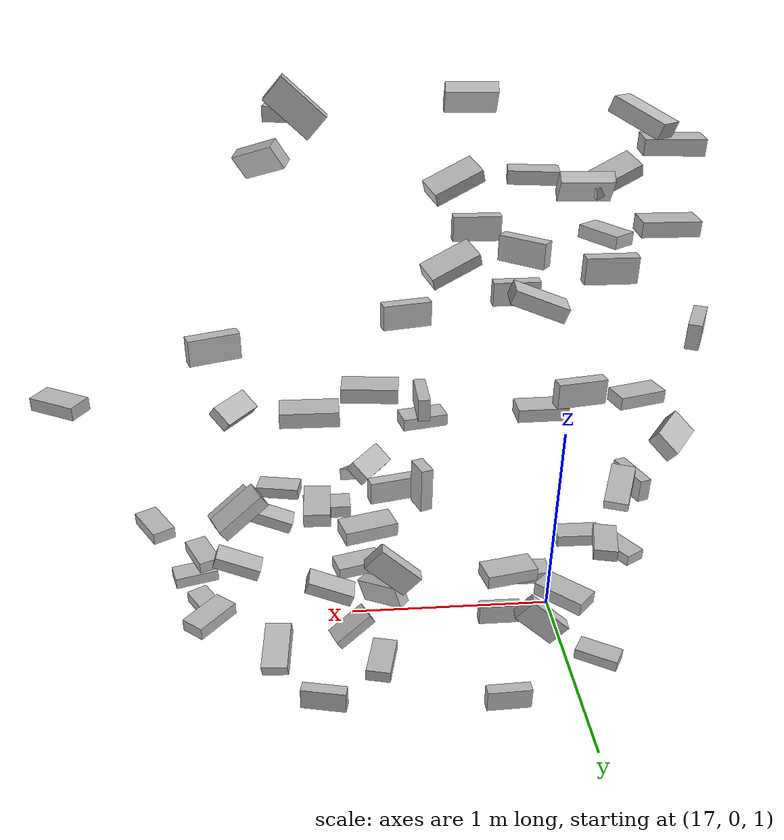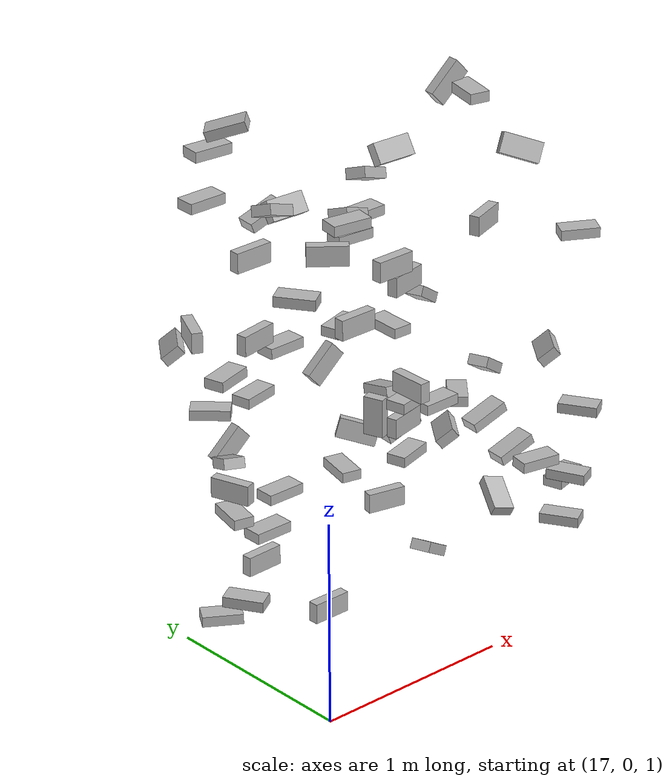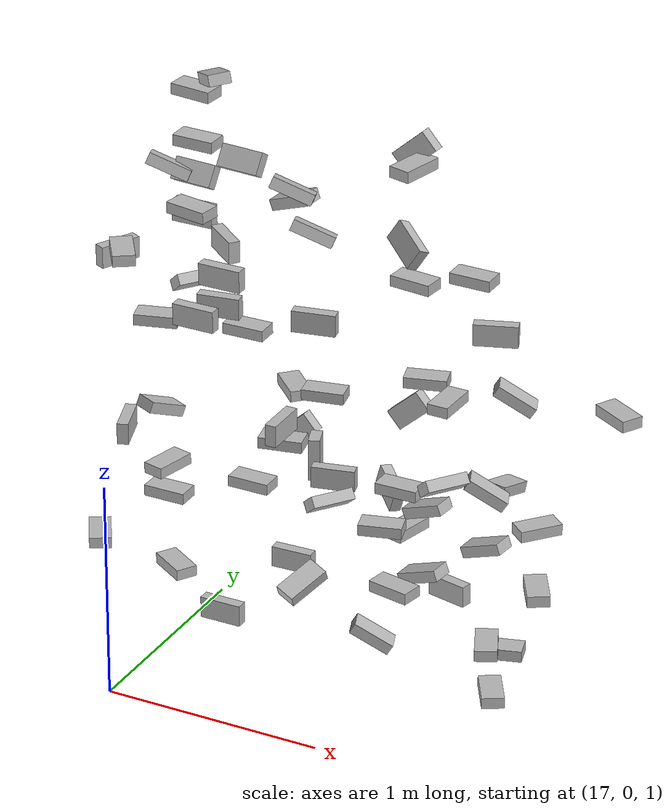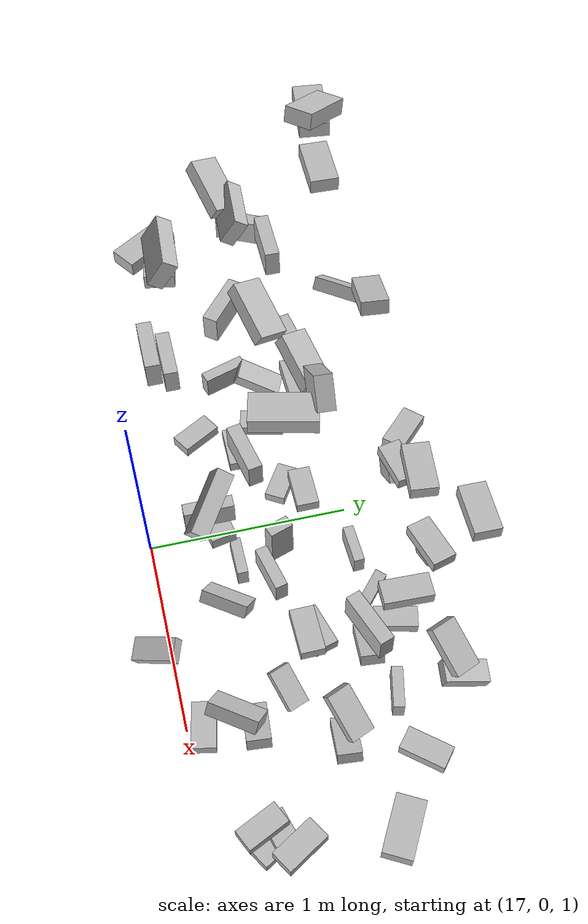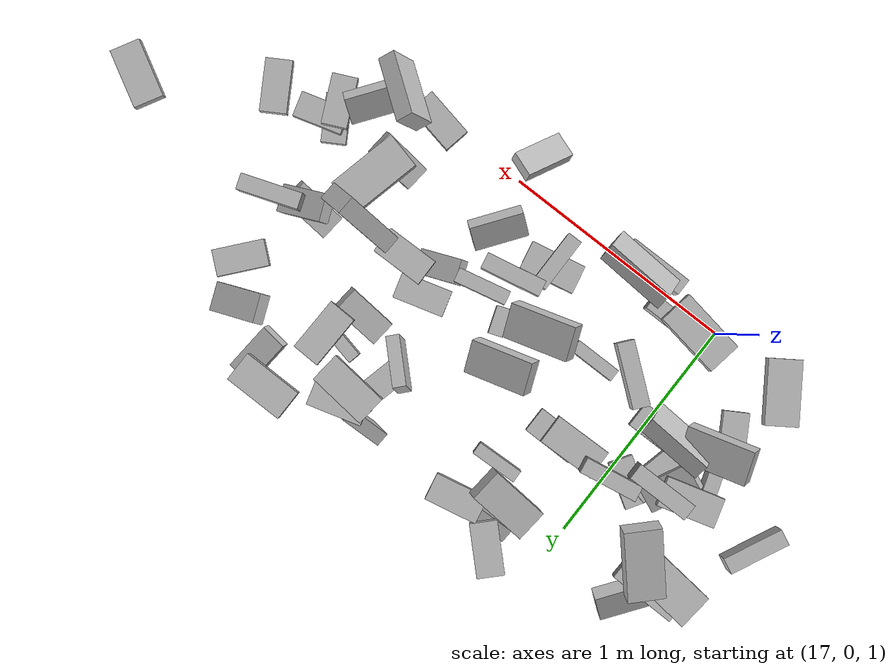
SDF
<sdf version="1.5">
 <world name="default">
  <scene>
   <sky><clouds><speed>3</speed></clouds></sky>
   <ambient>0.6 0.6 0.6 1</ambient>
   <background>0.5 0.5 0.5 1</background>
   <shadows>0</shadows>
  </scene>
  <include><uri>model://sun_2</uri></include>
  <include><name>dbrick_stack</name><pose>17.5 0.6 1 0 0 0</pose><uri>model://dbrick_stack</uri></include>
 </world>
</sdf>

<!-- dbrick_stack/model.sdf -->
<sdf version="1.5">
  <model name="dbrick_stack">

    <include>
      <name>d0</name>
      <pose frame=''>-0.159002 -0.204749 0.29849 0.000197 -1.3e-05 0.000845</pose>
      <uri>model://dbrick</uri>
    </include>
    <include>
      <name>d1</name>
      <pose frame=''>0 -0.459723 2.04849 0.000197 -1.3e-05 0.000845</pose>
      <uri>model://dbrick</uri>
    </include>
    <include>
      <name>d3</name>
      <pose frame=''>-0.39794 0.02585 2.04849 0.000197 -1.3e-05 0.000845</pose>
      <uri>model://dbrick</uri>
    </include>
    <include>
      <name>d4</name>
      <pose frame=''>-0.1629 -0.39564 1.79849 0.000197 -1.3e-05 0.000845</pose>
      <uri>model://dbrick</uri>
    </include>
    <include>
      <name>d6</name>
      <pose frame=''>-0.175951 0.107717 0.774998 -1.5708 -2e-05 -0.003486</pose>
      <uri>model://dbrick</uri>
    </include>
    <include>
      <name>d7</name>
      <pose frame=''>-0.455829 -0.13263 0.774998 -1.5708 -2e-05 -0.003486</pose>
      <uri>model://dbrick</uri>
    </include>
    <include>
      <name>d9</name>
      <pose frame=''>-0.314268 -0.109297 2.304224 -0.581093 -4e-06 -0.062141</pose>
      <uri>model://dbrick</uri>
    </include>
    <include>
      <name>d10</name>
      <pose frame=''>0.060434 -0.383261 2.554224 -0.581093 -4e-06 -0.062141</pose>
      <uri>model://dbrick</uri>
    </include>
    <include>
      <name>d11</name>
      <pose frame=''>0.15144 -0.117381 2.330433 1.25558 0.376008 0.279887</pose>
      <uri>model://dbrick</uri>
    </include>
    <include>
      <name>d12</name>
      <pose frame=''>0.171229 0.023884 2.080433 1.25558 0.376008 0.279887</pose>
      <uri>model://dbrick</uri>
    </include>
    <include>
      <name>d14</name>
      <pose frame=''>-0.416178 -0.145607 2.330433 1.25558 0.376008 0.279887</pose>
      <uri>model://dbrick</uri>
    </include>
    <include>
      <name>d16</name>
      <pose frame=''>-0.384418 0.18962 2.6074 -1.47754 -0.315178 -0.823493</pose>
      <uri>model://dbrick</uri>
    </include>
    <include>
      <name>d18</name>
      <pose frame=''>0.528574 -0.127156 0.320548 1.57083 0.543761 0.363115</pose>
      <uri>model://dbrick</uri>
    </include>
    <include>
      <name>d20</name>
      <pose frame=''>0.434794 0.370416 0.575004 -1.57068 2.7e-05 -1.80586</pose>
      <uri>model://dbrick</uri>
    </include>
    <include>
      <name>d21</name>
      <pose frame=''>0.731074 -0.160918 2.574998 -1.57084 1e-05 -1.80522</pose>
      <uri>model://dbrick</uri>
    </include>
    <include>
      <name>d22</name>
      <pose frame=''>-0.537357 0 0.824999 -1.57083 0 -1.80383</pose>
      <uri>model://dbrick</uri>
    </include>
    <include>
      <name>d24</name>
      <pose frame=''>-0.482431 0.202994 2.525 -1.57078 -8e-06 -0.102342</pose>
      <uri>model://dbrick</uri>
    </include>
    <include>
      <name>d26</name>
      <pose frame=''>0.479081 0.35788 1.775 -1.57078 -8e-06 -0.102342</pose>
      <uri>model://dbrick</uri>
    </include>
    <include>
      <name>d27</name>
      <pose frame=''>-0.58793 0.354508 1.549822 -2.24338 0.000538 0.942008</pose>
      <uri>model://dbrick</uri>
    </include>
    <include>
      <name>d30</name>
      <pose frame=''>0.43375 -0.336843 1.049822 -2.24338 0.000538 0.942008</pose>
      <uri>model://dbrick</uri>
    </include>
    <include>
      <name>d31</name>
      <pose frame=''>1 -0.405395 1.299822 -2.24338 0.000538 0.942008</pose>
      <uri>model://dbrick</uri>
    </include>
    <include>
      <name>d32</name>
      <pose frame=''>0.667152 0.330834 0.348492 -1.2e-05 9e-06 -0.219058</pose>
      <uri>model://dbrick</uri>
    </include>
    <include>
      <name>d35</name>
      <pose frame=''>-0.076411 0.319029 2.056619 -1.5708 -0.356957 -0.09265</pose>
      <uri>model://dbrick</uri>
    </include>
    <include>
      <name>d36</name>
      <pose frame=''>1 0 0.806619 -1.5708 -0.356957 -0.09265</pose>
      <uri>model://dbrick</uri>
    </include>
    <include>
      <name>d37</name>
      <pose frame=''>0.867278 -0.322243 0.806619 -1.5708 -0.356957 -0.09265</pose>
      <uri>model://dbrick</uri>
    </include>
    <include>
      <name>d38</name>
      <pose frame=''>0.627216 0.18901 0.806619 -1.5708 -0.356957 -0.09265</pose>
      <uri>model://dbrick</uri>
    </include>
    <include>
      <name>d41</name>
      <pose frame=''>1 0 1.072452 1.57089 0.572042 0.391576</pose>
      <uri>model://dbrick</uri>
    </include>
    <include>
      <name>d42</name>
      <pose frame=''>0.942236 0.385775 1.322452 1.57089 0.572042 0.391576</pose>
      <uri>model://dbrick</uri>
    </include>
    <include>
      <name>d44</name>
      <pose frame=''>0.404892 0.46886 1.099675 3.13965 0.733785 3.09129</pose>
      <uri>model://dbrick</uri>
    </include>
    <include>
      <name>d45</name>
      <pose frame=''>-0.154358 0.490646 0.849675 3.13965 0.733785 3.09129</pose>
      <uri>model://dbrick</uri>
    </include>
    <include>
      <name>d47</name>
      <pose frame=''>0.690469 -0.05407 2.599675 3.13965 0.733785 3.09129</pose>
      <uri>model://dbrick</uri>
    </include>
    <include>
      <name>d48</name>
      <pose frame=''>1.19427 -0.330485 0.324998 1.57085 0.000157 -1.03299</pose>
      <uri>model://dbrick</uri>
    </include>
    <include>
      <name>d50</name>
      <pose frame=''>-0.716187 -0.285831 0.574998 1.57085 0.000157 -1.03299</pose>
      <uri>model://dbrick</uri>
    </include>
    <include>
      <name>d52</name>
      <pose frame=''>1.36508 -0.266131 0.824998 1.57085 0.000157 -1.03299</pose>
      <uri>model://dbrick</uri>
    </include>
    <include>
      <name>d53</name>
      <pose frame=''>0.824242 -0.394745 2.347201 -0.459369 0.338975 -0.627792</pose>
      <uri>model://dbrick</uri>
    </include>
    <include>
      <name>d57</name>
      <pose frame=''>0.506639 0 0.774998 1.57084 -1e-06 0.27518</pose>
      <uri>model://dbrick</uri>
    </include>
    <include>
      <name>d58</name>
      <pose frame=''>0.493977 0.442686 1.274998 1.57084 -1e-06 0.27518</pose>
      <uri>model://dbrick</uri>
    </include>
    <include>
      <name>d59</name>
      <pose frame=''>-0.572985 0 1.524998 1.57084 -1e-06 0.27518</pose>
      <uri>model://dbrick</uri>
    </include>
    <include>
      <name>d65</name>
      <pose frame=''>-0.56474 0 1.100581 -1.59577 -0.404556 -1.97374</pose>
      <uri>model://dbrick</uri>
    </include>
    <include>
      <name>d68</name>
        <pose frame=''>-0.208238 0.552925 1.025 1.5708 -0 2.36808</pose>
      <uri>model://dbrick</uri>
    </include>
    <include>
      <name>d71</name>
        <pose frame=''>-0.133609 -0.183068 2.0485 1.1e-05 -0 -0.672185</pose>
      <uri>model://dbrick</uri>
    </include>
    <include>
      <name>d72</name>
        <pose frame=''>0.833594 -0.521409 0.824998 1.57083 -8e-06 -0.192502</pose>
      <uri>model://dbrick</uri>
    </include>
    <include>
      <name>d75</name>
        <pose frame=''>-0.181742 0.085627 1.524822 -1.57076 -0 0.018671</pose>
      <uri>model://dbrick</uri>
    </include>
    <include>
      <name>d78</name>
        <pose frame=''>0.354362 -0.145673 1.048498 -3.14158 -2e-05 0.220302</pose>
      <uri>model://dbrick</uri>
    </include>
    <include>
      <name>d79</name>
        <pose frame=''>0.210105 -0.329515 1.275 1.5708 0 0.203738</pose>
      <uri>model://dbrick</uri>
    </include>
    <include>
      <name>d81</name>
        <pose frame=''>-0.321636 0.094184 1.598508 0.000201 0.000142 0.166547</pose>
      <uri>model://dbrick</uri>
    </include>
    <include>
      <name>d82</name>
        <pose frame=''>0.235621 -0.087015 1.095 -1.36001 1.57079 -2.59197</pose>
      <uri>model://dbrick</uri>
    </include>
    <include>
      <name>d86</name>
        <pose frame=''>1.01615 0.036061 1.7985 -2e-06 -1e-06 0.337811</pose>
      <uri>model://dbrick</uri>
    </include>
    <include>
      <name>d88</name>
        <pose frame=''>1.22383 -0.303206 0.525 1.5708 0 0.281377</pose>
      <uri>model://dbrick</uri>
    </include>
    <include>
      <name>d89</name>
        <pose frame=''>-0.015842 0.475256 1.074997 1.57079 -2.7e-05 0.20017</pose>
      <uri>model://dbrick</uri>
    </include>
    <include>
      <name>d91</name>
        <pose frame=''>1.59558 0.00116 1.575004 1.57097 -1.7e-05 -0.507954</pose>
      <uri>model://dbrick</uri>
    </include>
    <include>
      <name>d95</name>
        <pose frame=''>1.19095 -0.377221 0.574988 1.57075 4.1e-05 -1.13744</pose>
      <uri>model://dbrick</uri>
    </include>
    <include>
      <name>d99</name>
        <pose frame=''>0.667545 0.296599 1.275 1.5708 -0 -1.60203</pose>
      <uri>model://dbrick</uri>
    </include>
    <include>
      <name>d103</name>
        <pose frame=''>-0.552824 0.085082 0.275 -1.57079 -0 -0.557269</pose>
      <uri>model://dbrick</uri>
    </include>
    <include>
      <name>d104</name>
        <pose frame=''>-0.50259 -0.403103 2.025 -1.5708 -0 -0.976965</pose>
      <uri>model://dbrick</uri>
    </include>
    <include>
      <name>d106</name>
        <pose frame=''>-0.185448 -0.370894 2.275 -1.5708 -0 -0.163132</pose>
      <uri>model://dbrick</uri>
    </include>
    <include>
      <name>d107</name>
        <pose frame=''>-0.496511 0.236222 2.274996 -1.57082 3.5e-05 -0.016629</pose>
      <uri>model://dbrick</uri>
    </include>
    <include>
      <name>d113</name>
        <pose frame=''>1.09893 0.293439 0.775 -1.5708 -0 0.871658</pose>
      <uri>model://dbrick</uri>
    </include>
    <include>
      <name>d115</name>
        <pose frame=''>-0.10053 0.333621 0.298387 -3.14159 -2.1e-05 0.035533</pose>
      <uri>model://dbrick</uri>
    </include>
    <include>
      <name>d117</name>
        <pose frame=''>0.683731 0.504059 1.774997 -1.5708 -3.5e-05 -0.007809</pose>
      <uri>model://dbrick</uri>
    </include>
    <include>
      <name>d121</name>
        <pose frame=''>0.626777 -0.065599 1.025002 -1.57078 1.2e-05 -3.13012</pose>
      <uri>model://dbrick</uri>
    </include>
    <include>
      <name>d122</name>
        <pose frame=''>-0.761473 -0.002589 1.7985 0 -0 -2.01795</pose>
      <uri>model://dbrick</uri>
    </include>
    <include>
      <name>d123</name>
        <pose frame=''>0.421123 0.246138 0.825047 -0.145107 0.26852 -0.764897</pose>
      <uri>model://dbrick</uri>
    </include>
    <include>
      <name>d125</name>
        <pose frame=''>0.299765 -0.209694 1.7985 -4e-06 1e-06 0.200864</pose>
      <uri>model://dbrick</uri>
    </include>
    <include>
      <name>d126</name>
        <pose frame=''>-0.658381 -0.134313 1.048502 -6.1e-05 -0 -1.24975</pose>
      <uri>model://dbrick</uri>
    </include>
    <include>
      <name>d129</name>
        <pose frame=''>0.83533 0.525416 0.802502 -1.63733 -0.270351 -1.66961</pose>
      <uri>model://dbrick</uri>
    </include>
    <include>
      <name>d131</name>
        <pose frame=''>0.212065 -0.348149 1.348501 2e-05 2.3e-05 -1.56638</pose>
      <uri>model://dbrick</uri>
    </include>
    <include>
      <name>d134</name>
        <pose frame=''>0.468161 -0.645843 0.819192 -1.80835 0.390523 -2.01871</pose>
      <uri>model://dbrick</uri>
    </include>

  </model>
</sdf>

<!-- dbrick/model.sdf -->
<sdf version="1.5">
  <model name="dbrick">
    <static>false</static>
    <self_collide>true</self_collide>
    <link name="link">
      <inertial>
        <mass>2.0</mass>
          <inertia>
            <ixx>1.984833e-2</ixx>
            <ixy>0.0</ixy>
            <ixz>0.0</ixz>
            <iyy>6.433333e-2</iyy>
            <iyz>0.0</iyz>
            <izz>7.584833e-2</izz>
          </inertia>
      </inertial>
      <collision name="dbrickC">
        <geometry>
          <box>
            <size>0.19 0.05 0.097</size>
          </box>
        </geometry>
      </collision>
      <visual name="dbrickV">
        <cast_shadows>false</cast_shadows>
        <geometry>
          <box>
            <size>0.19 0.05 0.097</size>
          </box>
        </geometry>
        <material>
          <script>
            <uri>model://dbrick/materials/scripts</uri>
            <uri>model://dbrick/materials/textures</uri>
            <name>vrc/dbrick</name>
          </script>
        </material>
      </visual>
    </link>
  </model>
</sdf>
